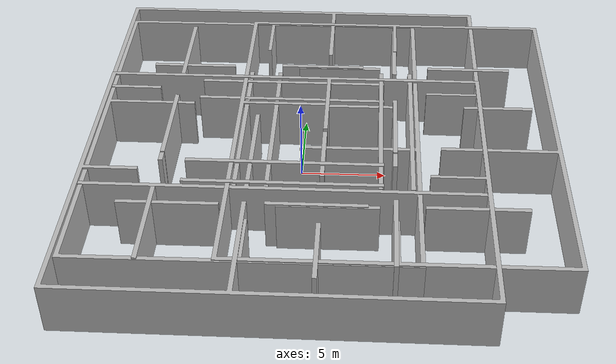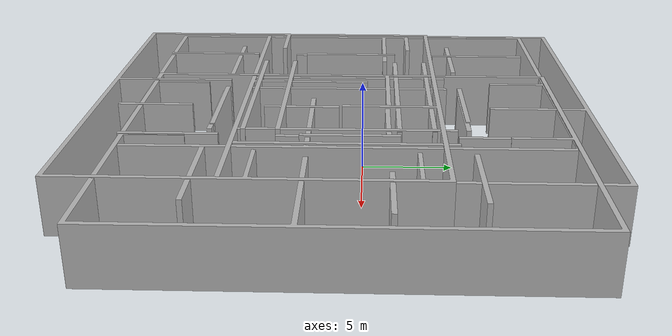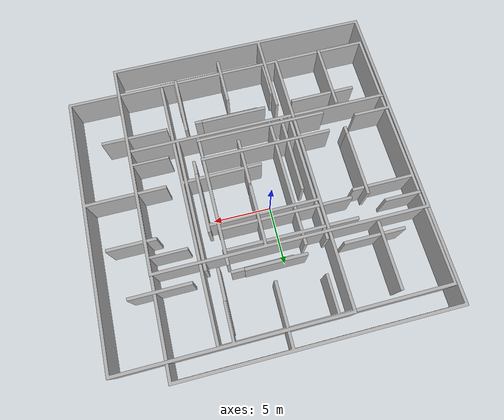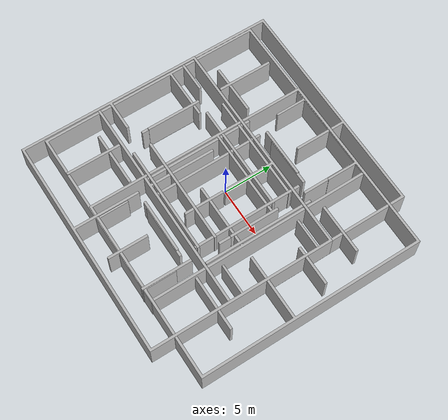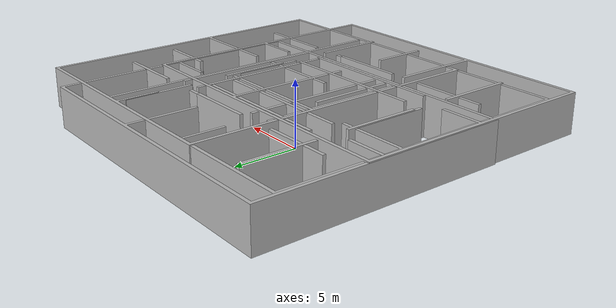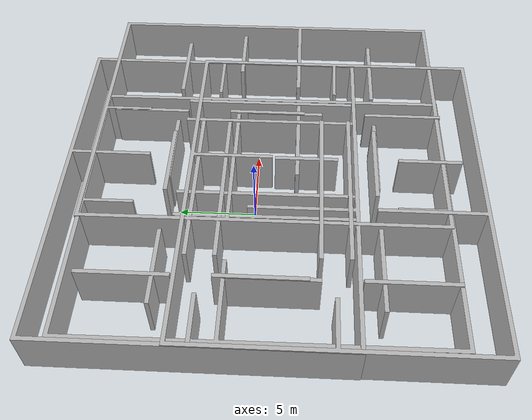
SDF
<sdf version="1.4">
 <world name="default">
  <light name="sun" type="directional">
   <pose>0 0 10 0 -0 0</pose>
   <diffuse>0.8 0.8 0.8 1</diffuse>
   <specular>0.2 0.2 0.2 1</specular>
   <attenuation>
    <range>1000</range>
    <constant>0.9</constant>
    <linear>0.01</linear>
    <quadratic>0.001</quadratic>
   </attenuation>
   <direction>-0.5 0.1 -0.9</direction>
  </light>
  <physics type="ode">
   <max_step_size>0.001</max_step_size>
   <real_time_factor>1</real_time_factor>
   <real_time_update_rate>1000</real_time_update_rate>
   <gravity>0 0 -9.8</gravity>
  </physics>
  <scene><ambient>0.4 0.4 0.4 1</ambient><background>0.7 0.7 0.7 1</background><shadows>1</shadows></scene>
  <spherical_coordinates>
   <surface_model>EARTH_WGS84</surface_model>
   <latitude_deg>0</latitude_deg>
   <longitude_deg>0</longitude_deg>
   <elevation>0</elevation>
   <heading_deg>0</heading_deg>
  </spherical_coordinates>
  <model name="room">
   <static>1</static>
   <link name="link">
    <collision name="collision">
     <geometry><mesh><uri>model://room/meshes/room.dae</uri></mesh></geometry>
    </collision>
    <visual name="visual"><geometry><mesh><uri>model://room/meshes/room.dae</uri></mesh></geometry></visual>
    <velocity_decay><linear>0</linear><angular>0</angular></velocity_decay>
   </link>
   <pose>-0.643155 -5.08086 1.26215 0 -0 0</pose>
  </model>
  <model name="room_0">
   <static>1</static>
   <link name="link">
    <collision name="collision">
     <geometry><mesh><uri>model://room/meshes/room.dae</uri></mesh></geometry>
    </collision>
    <visual name="visual"><geometry><mesh><uri>model://room/meshes/room.dae</uri></mesh></geometry></visual>
    <velocity_decay><linear>0</linear><angular>0</angular></velocity_decay>
   </link>
   <pose>-2.38711 -0.823865 1.16577 0 -0 1.57571</pose>
  </model>
  <model name="room_1">
   <static>1</static>
   <link name="link">
    <collision name="collision">
     <geometry><mesh><uri>model://room/meshes/room.dae</uri></mesh></geometry>
    </collision>
    <visual name="visual"><geometry><mesh><uri>model://room/meshes/room.dae</uri></mesh></geometry></visual>
    <velocity_decay><linear>0</linear><angular>0</angular></velocity_decay>
   </link>
   <pose>5.53844 -0.725021 1.22454 0 -0 1.5733</pose>
  </model>
  <model name="room_2">
   <static>1</static>
   <link name="link">
    <collision name="collision">
     <geometry><mesh><uri>model://room/meshes/room.dae</uri></mesh></geometry>
    </collision>
    <visual name="visual"><geometry><mesh><uri>model://room/meshes/room.dae</uri></mesh></geometry></visual>
    <velocity_decay><linear>0</linear><angular>0</angular></velocity_decay>
   </link>
   <pose>-0.656873 2.75298 1.19094 0 -0 0</pose>
  </model>
 </world>
</sdf>
